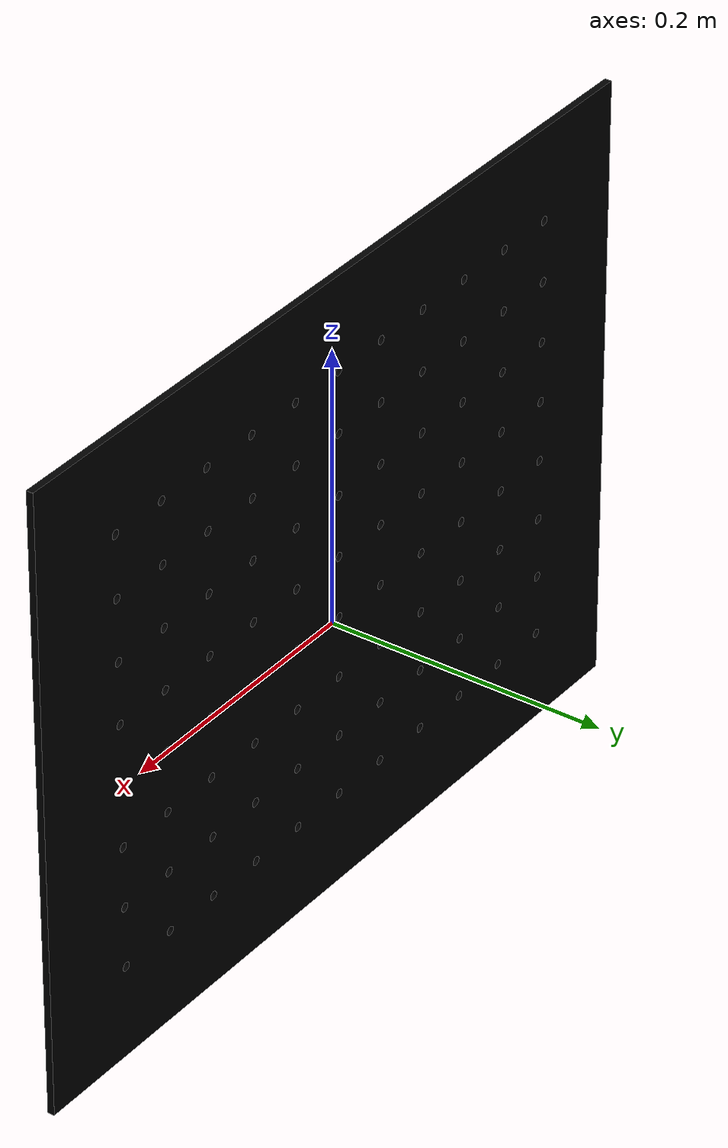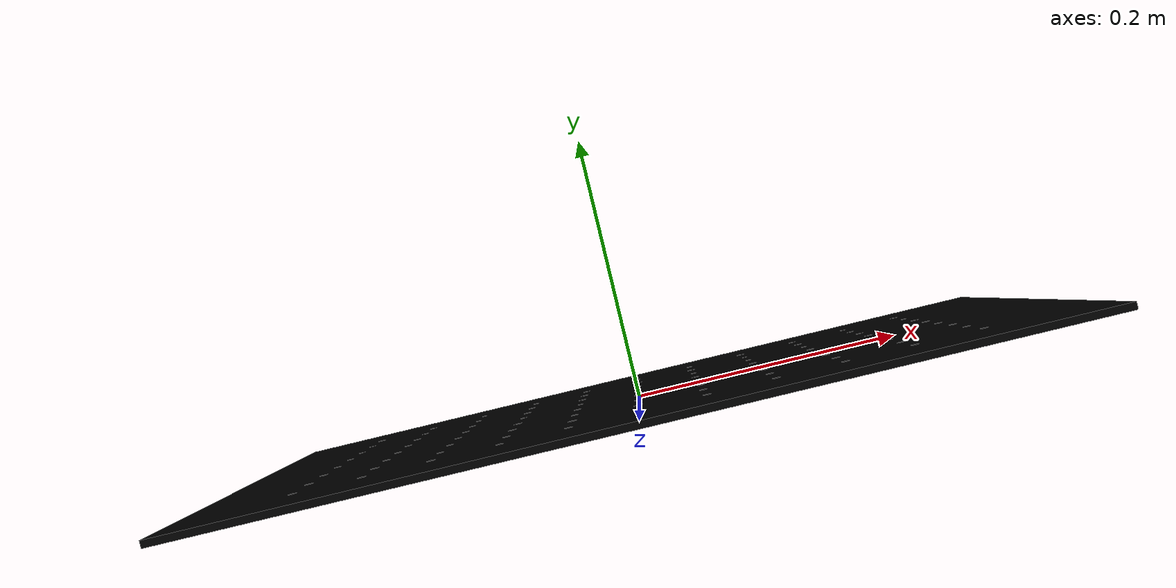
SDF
<?xml version="1.0" ?>
<sdf version="1.6">
  <model name="plate_model">
    <link name="link">
      <pose>-0.3 0.0 -0.225 0.0 0 0</pose>
      <inertial>
        <mass>1000.0</mass>
        <inertia>
          <ixx>0.083</ixx>
          <ixy>0.0</ixy>
          <ixz>0.0</ixz>
          <iyy>0.083</iyy>
          <iyz>0.0</iyz>
          <izz>0.083</izz>
        </inertia>
      </inertial>
      <collision name="collision">
        <geometry>
          <mesh>
            <uri>model://plate_model/meshes/COLLISION_plate_model.stl</uri>
            <!-- 600 mm x 450 mm -->
            <scale>0.001 0.001 0.001</scale>
          </mesh>
        </geometry>
      </collision>
      <visual name="visual">
        <geometry>
          <mesh>
            <uri>model://plate_model/meshes/plate_model.stl</uri>
            <!-- 600 mm x 450 mm -->
            <scale>0.001 0.001 0.001</scale>
          </mesh>
        </geometry>
        <material> <!-- dark material -->
          <ambient>0 0 0 1</ambient>
          <diffuse>0 0 0 1</diffuse>
          <specular>0 0 0 0</specular>
          <emissive>0 0 0 1</emissive>
        </material>
      </visual>
    </link>
  </model>
</sdf>
